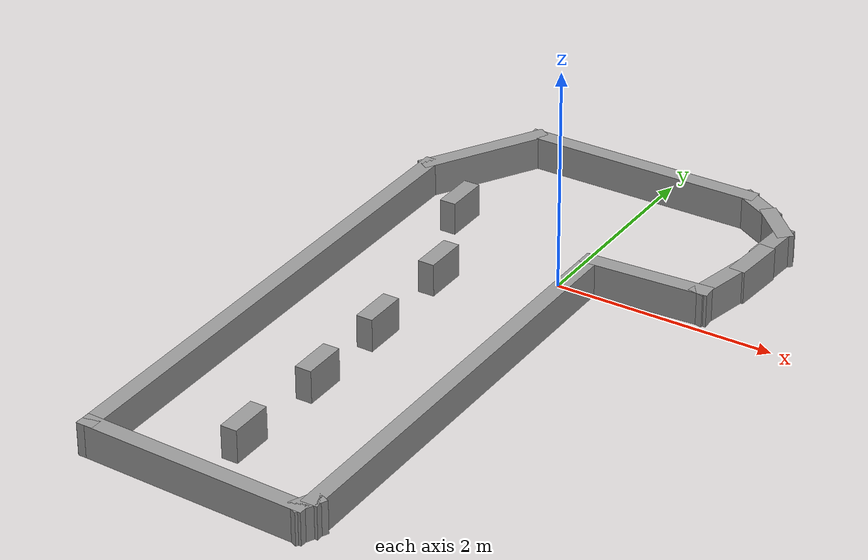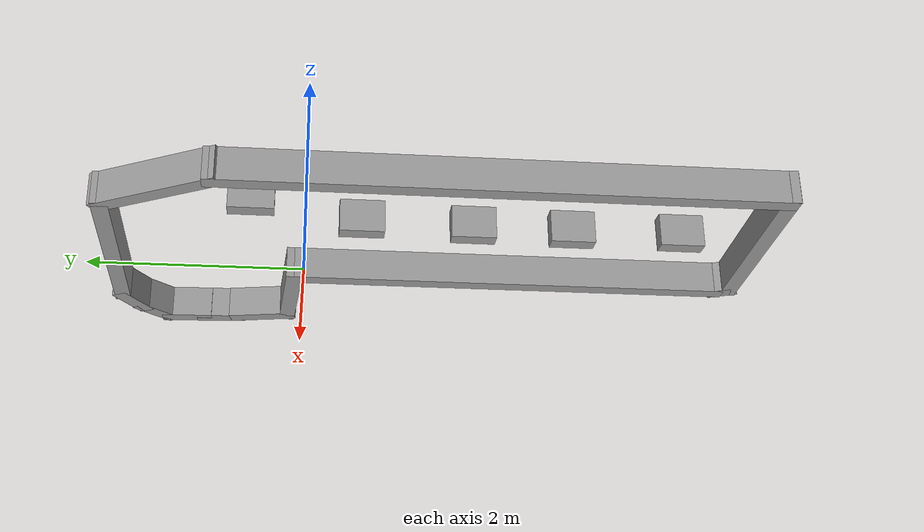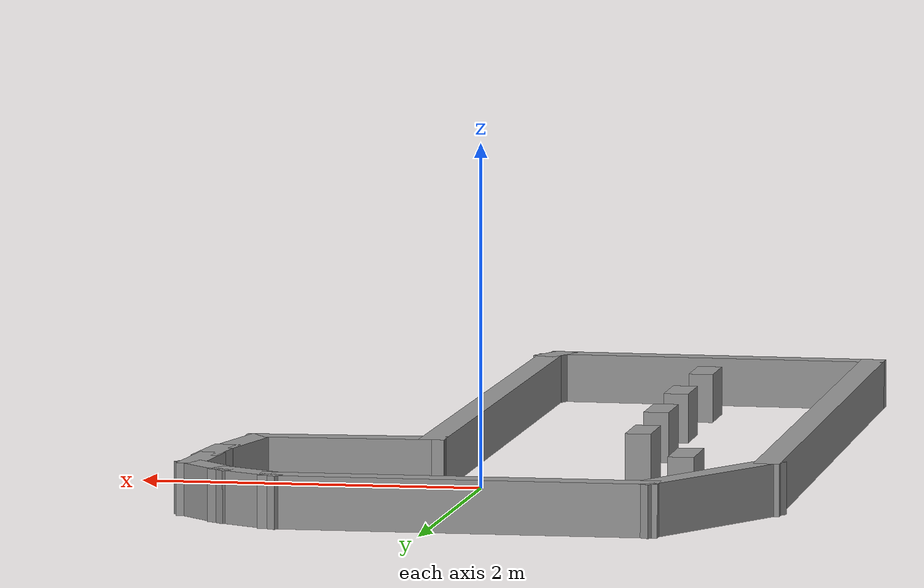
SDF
<?xml version='1.0'?>
<sdf version='1.7'>
  <model name='mock_supermarket'>
    <pose>-0.179143 -1.1899 0 0 -0 0</pose>
    <link name='Wall_0'>
      <collision name='Wall_0_Collision'>
        <geometry>
          <box>
            <size>0.4 0.15 0.3</size>
          </box>
        </geometry>
        <pose>0 0 0.15 0 -0 0</pose>
      </collision>
      <visual name='Wall_0_Visual'>
        <pose>0 0 0.15 0 -0 0</pose>
        <geometry>
          <box>
            <size>0.4 0.15 0.3</size>
          </box>
        </geometry>
        <material>
          <script>
            <uri>file://media/materials/scripts/gazebo.material</uri>
            <name>Gazebo/Grey</name>
          </script>
          <ambient>0 0 0 1</ambient>
        </material>
        <meta>
          <layer>0</layer>
        </meta>
      </visual>
      <pose>-1.08786 1.6699 0 0 -0 -1.5708</pose>
    </link>
    <link name='Wall_10'>
      <collision name='Wall_10_Collision'>
        <geometry>
          <box>
            <size>0.4 0.15 0.3</size>
          </box>
        </geometry>
        <pose>0 0 0.15 0 -0 0</pose>
      </collision>
      <visual name='Wall_10_Visual'>
        <pose>0 0 0.15 0 -0 0</pose>
        <geometry>
          <box>
            <size>0.4 0.15 0.3</size>
          </box>
        </geometry>
        <material>
          <script>
            <uri>file://media/materials/scripts/gazebo.material</uri>
            <name>Gazebo/Grey</name>
          </script>
          <ambient>0 0 0 1</ambient>
        </material>
        <meta>
          <layer>0</layer>
        </meta>
      </visual>
      <pose>-0.649857 -0.296098 0 0 -0 -1.5708</pose>
    </link>
    <link name='Wall_2'>
      <collision name='Wall_2_Collision'>
        <geometry>
          <box>
            <size>0.4 0.15 0.3</size>
          </box>
        </geometry>
        <pose>0 0 0.15 0 -0 0</pose>
      </collision>
      <visual name='Wall_2_Visual'>
        <pose>0 0 0.15 0 -0 0</pose>
        <geometry>
          <box>
            <size>0.4 0.15 0.3</size>
          </box>
        </geometry>
        <material>
          <script>
            <uri>file://media/materials/scripts/gazebo.material</uri>
            <name>Gazebo/Grey</name>
          </script>
          <ambient>0 0 0 1</ambient>
        </material>
        <meta>
          <layer>0</layer>
        </meta>
      </visual>
      <pose>-0.692857 0.700901 0 0 -0 -1.5708</pose>
    </link>
    <link name='Wall_21'>
      <collision name='Wall_21_Collision'>
        <geometry>
          <box>
            <size>5 0.15 0.3</size>
          </box>
        </geometry>
        <pose>0 0 0.15 0 -0 0</pose>
      </collision>
      <visual name='Wall_21_Visual'>
        <pose>0 0 0.15 0 -0 0</pose>
        <geometry>
          <box>
            <size>5 0.15 0.3</size>
          </box>
        </geometry>
        <material>
          <script>
            <uri>file://media/materials/scripts/gazebo.material</uri>
            <name>Gazebo/Grey</name>
          </script>
          <ambient>0 0 0 1</ambient>
        </material>
        <meta>
          <layer>0</layer>
        </meta>
      </visual>
      <pose>-1.60186 -0.436099 0 0 -0 1.5708</pose>
    </link>
    <link name='Wall_24'>
      <collision name='Wall_24_Collision'>
        <geometry>
          <box>
            <size>1.25 0.15 0.3</size>
          </box>
        </geometry>
        <pose>0 0 0.15 0 -0 0</pose>
      </collision>
      <visual name='Wall_24_Visual'>
        <pose>0 0 0.15 0 -0 0</pose>
        <geometry>
          <box>
            <size>1.25 0.15 0.3</size>
          </box>
        </geometry>
        <material>
          <script>
            <uri>file://media/materials/scripts/gazebo.material</uri>
            <name>Gazebo/Grey</name>
          </script>
          <ambient>0 0 0 1</ambient>
        </material>
        <meta>
          <layer>0</layer>
        </meta>
      </visual>
      <pose>-1.32686 2.4649 0 0 -0 1.04691</pose>
    </link>
    <link name='Wall_25'>
      <collision name='Wall_25_Collision'>
        <geometry>
          <box>
            <size>2.25 0.15 0.3</size>
          </box>
        </geometry>
        <pose>0 0 0.15 0 -0 0</pose>
      </collision>
      <visual name='Wall_25_Visual'>
        <pose>0 0 0.15 0 -0 0</pose>
        <geometry>
          <box>
            <size>2.25 0.15 0.3</size>
          </box>
        </geometry>
        <material>
          <script>
            <uri>file://media/materials/scripts/gazebo.material</uri>
            <name>Gazebo/Grey</name>
          </script>
          <ambient>0 0 0 1</ambient>
        </material>
        <meta>
          <layer>0</layer>
        </meta>
      </visual>
      <pose>-0.001857 2.9409 0 0 -0 0</pose>
    </link>
    <link name='Wall_26'>
      <collision name='Wall_26_Collision'>
        <geometry>
          <box>
            <size>0.5 0.15 0.3</size>
          </box>
        </geometry>
        <pose>0 0 0.15 0 -0 0</pose>
      </collision>
      <visual name='Wall_26_Visual'>
        <pose>0 0 0.15 0 -0 0</pose>
        <geometry>
          <box>
            <size>0.5 0.15 0.3</size>
          </box>
        </geometry>
        <material>
          <script>
            <uri>file://media/materials/scripts/gazebo.material</uri>
            <name>Gazebo/Grey</name>
          </script>
          <ambient>0 0 0 1</ambient>
        </material>
        <meta>
          <layer>0</layer>
        </meta>
      </visual>
      <pose>1.19964 2.8534 0 0 -0 -0.523754</pose>
    </link>
    <link name='Wall_27'>
      <collision name='Wall_27_Collision'>
        <geometry>
          <box>
            <size>0.5 0.15 0.3</size>
          </box>
        </geometry>
        <pose>0 0 0.15 0 -0 0</pose>
      </collision>
      <visual name='Wall_27_Visual'>
        <pose>0 0 0.15 0 -0 0</pose>
        <geometry>
          <box>
            <size>0.5 0.15 0.3</size>
          </box>
        </geometry>
        <material>
          <script>
            <uri>file://media/materials/scripts/gazebo.material</uri>
            <name>Gazebo/Grey</name>
          </script>
          <ambient>0 0 0 1</ambient>
        </material>
        <meta>
          <layer>0</layer>
        </meta>
      </visual>
      <pose>1.47464 2.6424 0 0 -0 -0.785398</pose>
    </link>
    <link name='Wall_28'>
      <collision name='Wall_28_Collision'>
        <geometry>
          <box>
            <size>0.500214 0.15 0.3</size>
          </box>
        </geometry>
        <pose>0 0 0.15 0 -0 0</pose>
      </collision>
      <visual name='Wall_28_Visual'>
        <pose>0 0 0.15 0 -0 0</pose>
        <geometry>
          <box>
            <size>0.500214 0.15 0.3</size>
          </box>
        </geometry>
        <material>
          <script>
            <uri>file://media/materials/scripts/gazebo.material</uri>
            <name>Gazebo/Grey</name>
          </script>
          <ambient>0 0 0 1</ambient>
        </material>
        <meta>
          <layer>0</layer>
        </meta>
      </visual>
      <pose>1.58647 2.34418 0 0 -0 -1.63752</pose>
    </link>
    <link name='Wall_29'>
      <collision name='Wall_29_Collision'>
        <geometry>
          <box>
            <size>0.488137 0.15 0.3</size>
          </box>
        </geometry>
        <pose>0 0 0.15 0 -0 0</pose>
      </collision>
      <visual name='Wall_29_Visual'>
        <pose>0 0 0.15 0 -0 0</pose>
        <geometry>
          <box>
            <size>0.488137 0.15 0.3</size>
          </box>
        </geometry>
        <material>
          <script>
            <uri>file://media/materials/scripts/gazebo.material</uri>
            <name>Gazebo/Grey</name>
          </script>
          <ambient>0 0 0 1</ambient>
        </material>
        <meta>
          <layer>0</layer>
        </meta>
      </visual>
      <pose>1.57323 2.0009 0 0 -0 -1.64776</pose>
    </link>
    <link name='Wall_30'>
      <collision name='Wall_30_Collision'>
        <geometry>
          <box>
            <size>0.659492 0.15 0.3</size>
          </box>
        </geometry>
        <pose>0 0 0.15 0 -0 0</pose>
      </collision>
      <visual name='Wall_30_Visual'>
        <pose>0 0 0.15 0 -0 0</pose>
        <geometry>
          <box>
            <size>0.659492 0.15 0.3</size>
          </box>
        </geometry>
        <material>
          <script>
            <uri>file://media/materials/scripts/gazebo.material</uri>
            <name>Gazebo/Grey</name>
          </script>
          <ambient>0 0 0 1</ambient>
        </material>
        <meta>
          <layer>0</layer>
        </meta>
      </visual>
      <pose>1.49875 1.58255 0 0 -0 -1.76852</pose>
    </link>
    <link name='Wall_31'>
      <collision name='Wall_31_Collision'>
        <geometry>
          <box>
            <size>1.17032 0.15 0.3</size>
          </box>
        </geometry>
        <pose>0 0 0.15 0 -0 0</pose>
      </collision>
      <visual name='Wall_31_Visual'>
        <pose>0 0 0.15 0 -0 0</pose>
        <geometry>
          <box>
            <size>1.17032 0.15 0.3</size>
          </box>
        </geometry>
        <material>
          <script>
            <uri>file://media/materials/scripts/gazebo.material</uri>
            <name>Gazebo/Grey</name>
          </script>
          <ambient>0 0 0 1</ambient>
        </material>
        <meta>
          <layer>0</layer>
        </meta>
      </visual>
      <pose>0.950643 1.30683 0 0 -0 -3.09074</pose>
    </link>
    <link name='Wall_32'>
      <collision name='Wall_32_Collision'>
        <geometry>
          <box>
            <size>4.25 0.15 0.3</size>
          </box>
        </geometry>
        <pose>0 0 0.15 0 -0 0</pose>
      </collision>
      <visual name='Wall_32_Visual'>
        <pose>0 0 0.15 0 -0 0</pose>
        <geometry>
          <box>
            <size>4.25 0.15 0.3</size>
          </box>
        </geometry>
        <material>
          <script>
            <uri>file://media/materials/scripts/gazebo.material</uri>
            <name>Gazebo/Grey</name>
          </script>
          <ambient>0 0 0 1</ambient>
        </material>
        <meta>
          <layer>0</layer>
        </meta>
      </visual>
      <pose>0.441143 -0.769099 0 0 -0 -1.5708</pose>
    </link>
    <link name='Wall_33'>
      <collision name='Wall_33_Collision'>
        <geometry>
          <box>
            <size>0.287692 0.15 0.3</size>
          </box>
        </geometry>
        <pose>0 0 0.15 0 -0 0</pose>
      </collision>
      <visual name='Wall_33_Visual'>
        <pose>0 0 0.15 0 -0 0</pose>
        <geometry>
          <box>
            <size>0.287692 0.15 0.3</size>
          </box>
        </geometry>
        <material>
          <script>
            <uri>file://media/materials/scripts/gazebo.material</uri>
            <name>Gazebo/Grey</name>
          </script>
          <ambient>0 0 0 1</ambient>
        </material>
        <meta>
          <layer>0</layer>
        </meta>
      </visual>
      <pose>0.412643 -2.8816 0 0 -0 -1.99863</pose>
    </link>
    <link name='Wall_34'>
      <collision name='Wall_34_Collision'>
        <geometry>
          <box>
            <size>2.13838 0.15 0.3</size>
          </box>
        </geometry>
        <pose>0 0 0.15 0 -0 0</pose>
      </collision>
      <visual name='Wall_34_Visual'>
        <pose>0 0 0.15 0 -0 0</pose>
        <geometry>
          <box>
            <size>2.13838 0.15 0.3</size>
          </box>
        </geometry>
        <material>
          <script>
            <uri>file://media/materials/scripts/gazebo.material</uri>
            <name>Gazebo/Grey</name>
          </script>
          <ambient>0 0 0 1</ambient>
        </material>
        <meta>
          <layer>0</layer>
        </meta>
      </visual>
      <pose>-0.608857 -2.9026 0 0 -0 3.09982</pose>
    </link>
    <link name='Wall_6'>
      <collision name='Wall_6_Collision'>
        <geometry>
          <box>
            <size>0.4 0.15 0.3</size>
          </box>
        </geometry>
        <pose>0 0 0.15 0 -0 0</pose>
      </collision>
      <visual name='Wall_6_Visual'>
        <pose>0 0 0.15 0 -0 0</pose>
        <geometry>
          <box>
            <size>0.4 0.15 0.3</size>
          </box>
        </geometry>
        <material>
          <script>
            <uri>file://media/materials/scripts/gazebo.material</uri>
            <name>Gazebo/Grey</name>
          </script>
          <ambient>0 0 0 1</ambient>
        </material>
        <meta>
          <layer>0</layer>
        </meta>
      </visual>
      <pose>-0.642857 -2.1861 0 0 -0 -1.5708</pose>
    </link>
    <link name='Wall_8'>
      <collision name='Wall_8_Collision'>
        <geometry>
          <box>
            <size>0.4 0.15 0.3</size>
          </box>
        </geometry>
        <pose>0 0 0.15 0 -0 0</pose>
      </collision>
      <visual name='Wall_8_Visual'>
        <pose>0 0 0.15 0 -0 0</pose>
        <geometry>
          <box>
            <size>0.4 0.15 0.3</size>
          </box>
        </geometry>
        <material>
          <script>
            <uri>file://media/materials/scripts/gazebo.material</uri>
            <name>Gazebo/Grey</name>
          </script>
          <ambient>0 0 0 1</ambient>
        </material>
        <meta>
          <layer>0</layer>
        </meta>
      </visual>
      <pose>-0.634857 -1.1921 0 0 -0 -1.5708</pose>
    </link>
    <static>1</static>
  </model>
</sdf>
